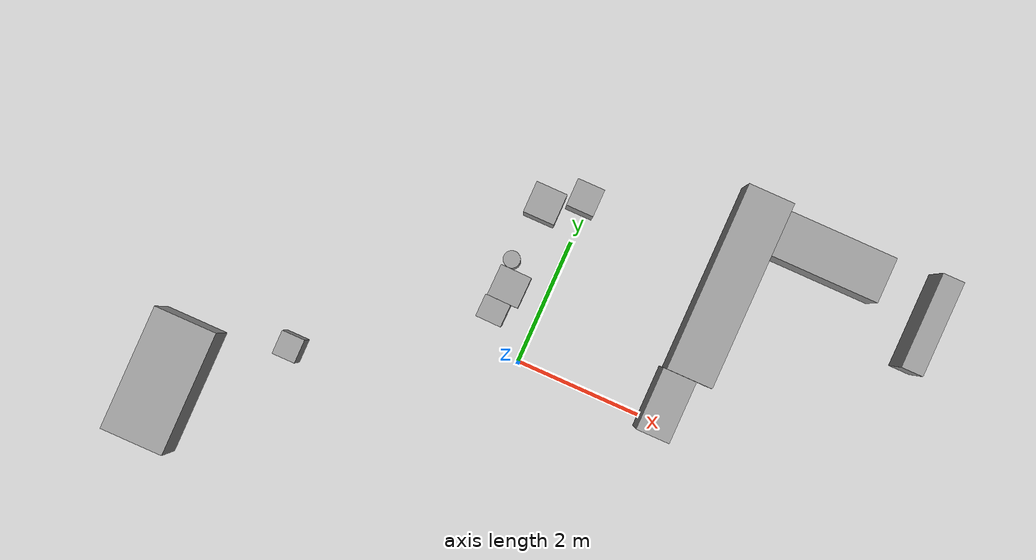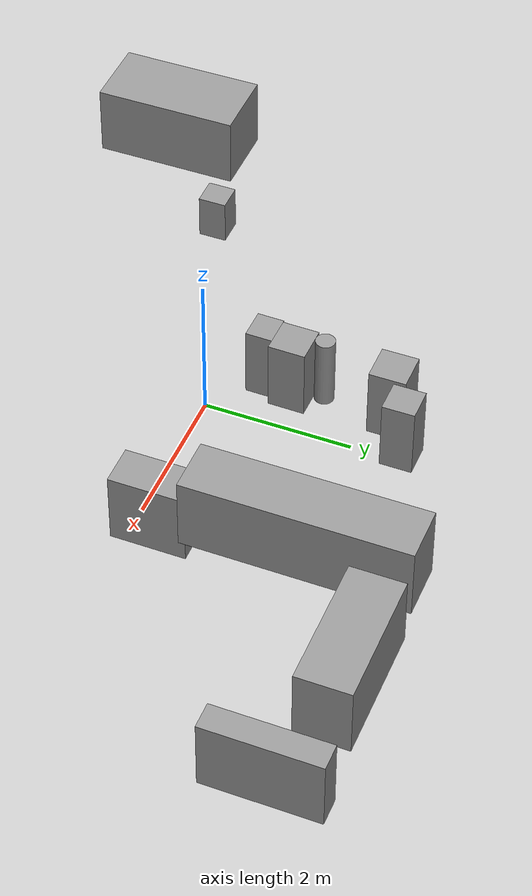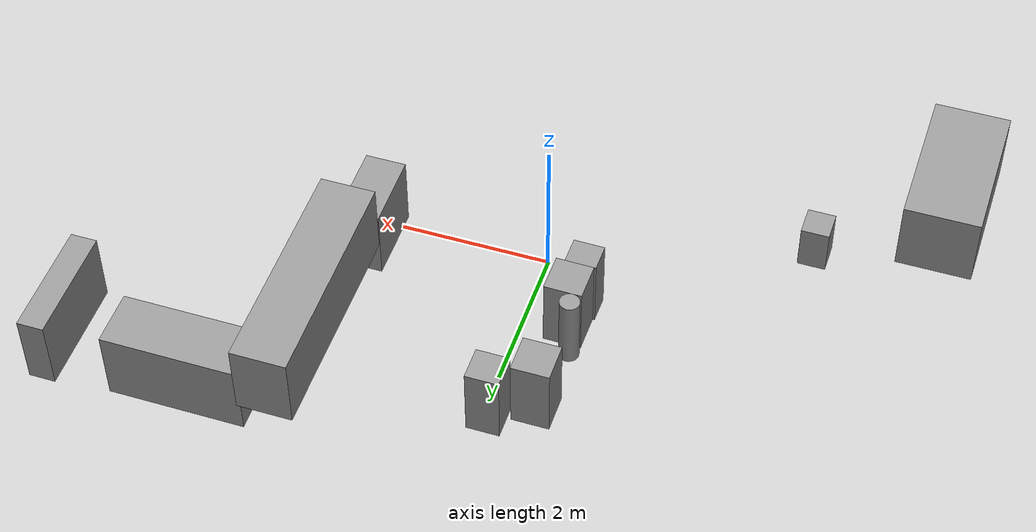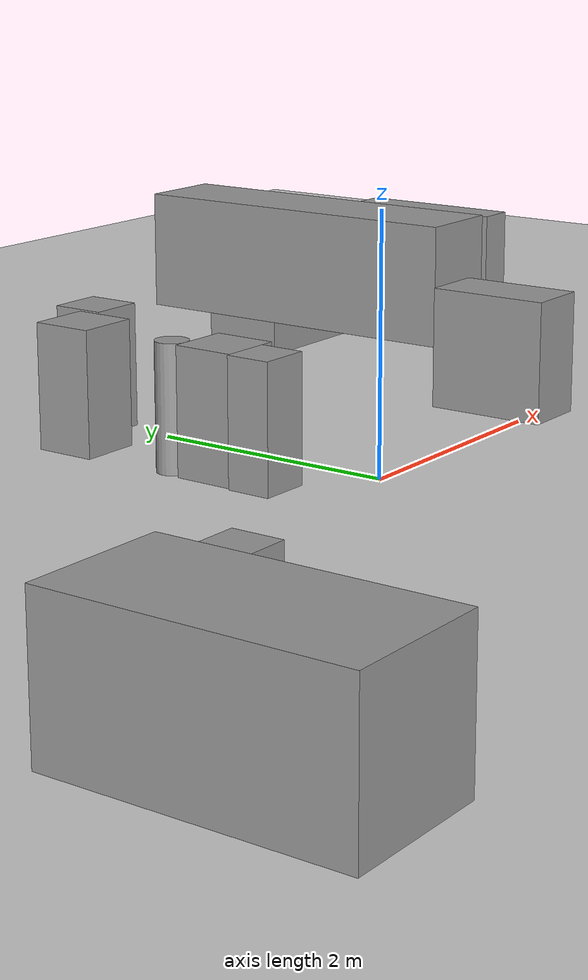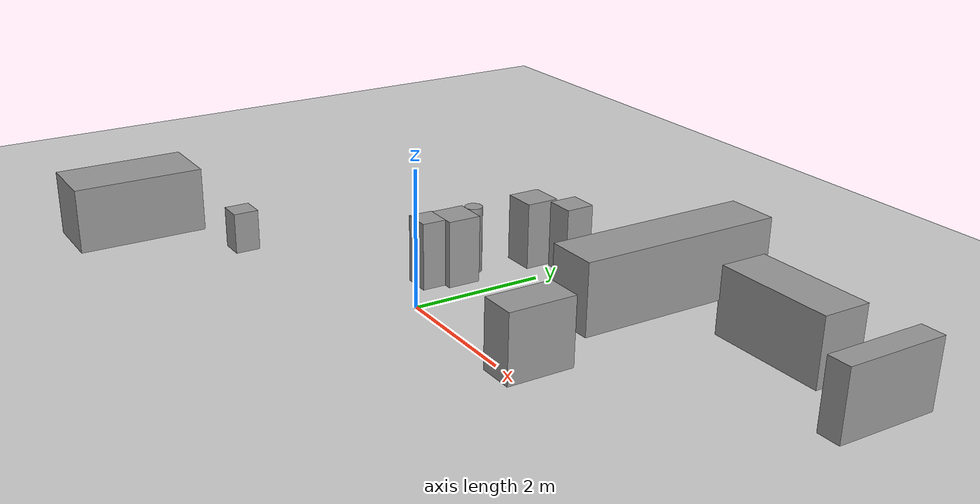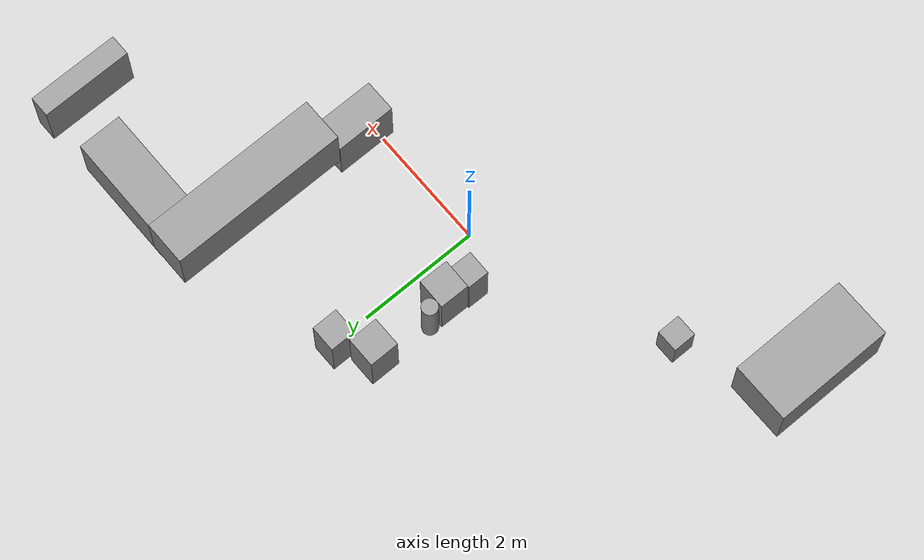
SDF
<sdf version="1.6">
 <world name="default">
  <model name="ground_plane">
   <static>1</static>
   <link name="link">
    <collision name="collision">
     <geometry><plane><normal>0 0 1</normal><size>100 100</size></plane></geometry>
     <surface><friction><ode><mu>100</mu><mu2>50</mu2></ode></friction></surface>
    </collision>
    <visual name="visual">
     <cast_shadows>0</cast_shadows>
     <geometry><plane><normal>0 0 1</normal><size>100 100</size></plane></geometry>
     <material>
      <script><uri>file://media/materials/scripts/gazebo.material</uri><name>Gazebo/Grey</name></script>
     </material>
    </visual>
   </link>
  </model>
  <model name="cma_gaveteiro_pequeno_0">
   <link name="link_0">
    <pose>0.256174 1.25055 0.5 0 -0 0</pose>
    <inertial>
     <mass>0.187186</mass>
     <inertia>
      <ixx>0.01851</ixx>
      <ixy>0</ixy>
      <ixz>0</ixz>
      <iyy>0.0185276</iyy>
      <iyz>0</iyz>
      <izz>0.00583981</izz>
     </inertia>
    </inertial>
    <visual name="visual">
     <geometry><box><size>0.433317 0.432002 1</size></box></geometry>
     <material>
      <lighting>1</lighting>
      <script><uri>file://media/materials/scripts/gazebo.material</uri><name>Gazebo/Grey</name></script>
      <ambient>0.3 0.3 0.3 1</ambient>
      <diffuse>0.7 0.7 0.7 1</diffuse>
      <specular>0.01 0.01 0.01 1</specular>
      <emissive>0 0 0 1</emissive>
     </material>
    </visual>
    <collision name="collision">
     <geometry><box><size>0.433317 0.432002 1</size></box></geometry>
     <surface>
      <friction>
       <ode><mu>1</mu><mu2>1</mu2><fdir1>0 0 0</fdir1><slip1>0</slip1><slip2>0</slip2></ode>
       <torsional>
        <coefficient>1</coefficient>
        <patch_radius>0</patch_radius>
        <surface_radius>0</surface_radius>
        <use_patch_radius>1</use_patch_radius>
        <ode><slip>0</slip></ode>
       </torsional>
      </friction>
      <bounce><restitution_coefficient>0</restitution_coefficient><threshold>1e+06</threshold></bounce>
      <contact>
       <collide_without_contact>0</collide_without_contact>
       <collide_without_contact_bitmask>1</collide_without_contact_bitmask>
       <collide_bitmask>1</collide_bitmask>
       <ode>
        <soft_cfm>0</soft_cfm>
        <soft_erp>0.2</soft_erp>
        <kp>1e+13</kp>
        <kd>1</kd>
        <max_vel>0.01</max_vel>
        <min_depth>0</min_depth>
       </ode>
       <bullet>
        <split_impulse>1</split_impulse>
        <split_impulse_penetration_threshold>-0.01</split_impulse_penetration_threshold>
        <soft_cfm>0</soft_cfm>
        <soft_erp>0.2</soft_erp>
        <kp>1e+13</kp>
        <kd>1</kd>
       </bullet>
      </contact>
     </surface>
    </collision>
   </link>
   <static>0</static>
   <pose>-0.336046 1.39512 0 0 0 -5.9e-05</pose>
  </model>
  <model name="cma_gaveteiro">
   <link name="link_0">
    <pose>-0 4e-06 0 0 -0 0</pose>
    <inertial>
     <mass>0.245086</mass>
     <inertia>
      <ixx>0.025418</ixx>
      <ixy>0</ixy>
      <ixz>0</ixz>
      <iyy>0.0254411</iyy>
      <iyz>0</iyz>
      <izz>0.0100113</izz>
     </inertia>
    </inertial>
    <visual name="visual">
     <geometry><box><size>0.495657 0.494491 1</size></box></geometry>
     <material>
      <lighting>1</lighting>
      <script><uri>file://media/materials/scripts/gazebo.material</uri><name>Gazebo/Grey</name></script>
      <ambient>0.3 0.3 0.3 1</ambient>
      <diffuse>0.7 0.7 0.7 1</diffuse>
      <specular>0.01 0.01 0.01 1</specular>
      <emissive>0 0 0 1</emissive>
     </material>
    </visual>
    <collision name="collision">
     <geometry><box><size>0.495657 0.494491 1</size></box></geometry>
     <surface>
      <friction>
       <ode><mu>1</mu><mu2>1</mu2><fdir1>0 0 0</fdir1><slip1>0</slip1><slip2>0</slip2></ode>
       <torsional>
        <coefficient>1</coefficient>
        <patch_radius>0</patch_radius>
        <surface_radius>0</surface_radius>
        <use_patch_radius>1</use_patch_radius>
        <ode><slip>0</slip></ode>
       </torsional>
      </friction>
      <bounce><restitution_coefficient>0</restitution_coefficient><threshold>1e+06</threshold></bounce>
      <contact>
       <collide_without_contact>0</collide_without_contact>
       <collide_without_contact_bitmask>1</collide_without_contact_bitmask>
       <collide_bitmask>1</collide_bitmask>
       <ode>
        <soft_cfm>0</soft_cfm>
        <soft_erp>0.2</soft_erp>
        <kp>1e+13</kp>
        <kd>1</kd>
        <max_vel>0.01</max_vel>
        <min_depth>0</min_depth>
       </ode>
       <bullet>
        <split_impulse>1</split_impulse>
        <split_impulse_penetration_threshold>-0.01</split_impulse_penetration_threshold>
        <soft_cfm>0</soft_cfm>
        <soft_erp>0.2</soft_erp>
        <kp>1e+13</kp>
        <kd>1</kd>
       </bullet>
      </contact>
     </surface>
    </collision>
   </link>
   <static>0</static>
   <pose>-0.591988 2.3262 0.5 -1e-06 -1e-06 0.000484</pose>
  </model>
  <model name="cma_gaveteiro_0">
   <link name="link_0">
    <pose>-0 4e-06 0 0 -0 0</pose>
    <inertial>
     <mass>0.245086</mass>
     <inertia>
      <ixx>0.025418</ixx>
      <ixy>0</ixy>
      <ixz>0</ixz>
      <iyy>0.0254411</iyy>
      <iyz>0</iyz>
      <izz>0.0100113</izz>
     </inertia>
    </inertial>
    <visual name="visual">
     <geometry><box><size>0.495657 0.494491 1</size></box></geometry>
     <material>
      <lighting>1</lighting>
      <script><uri>file://media/materials/scripts/gazebo.material</uri><name>Gazebo/Grey</name></script>
      <ambient>0.3 0.3 0.3 1</ambient>
      <diffuse>0.7 0.7 0.7 1</diffuse>
      <specular>0.01 0.01 0.01 1</specular>
      <emissive>0 0 0 1</emissive>
     </material>
    </visual>
    <collision name="collision">
     <geometry><box><size>0.495657 0.494491 1</size></box></geometry>
     <surface>
      <friction>
       <ode><mu>1</mu><mu2>1</mu2><fdir1>0 0 0</fdir1><slip1>0</slip1><slip2>0</slip2></ode>
       <torsional>
        <coefficient>1</coefficient>
        <patch_radius>0</patch_radius>
        <surface_radius>0</surface_radius>
        <use_patch_radius>1</use_patch_radius>
        <ode><slip>0</slip></ode>
       </torsional>
      </friction>
      <bounce><restitution_coefficient>0</restitution_coefficient><threshold>1e+06</threshold></bounce>
      <contact>
       <collide_without_contact>0</collide_without_contact>
       <collide_without_contact_bitmask>1</collide_without_contact_bitmask>
       <collide_bitmask>1</collide_bitmask>
       <ode>
        <soft_cfm>0</soft_cfm>
        <soft_erp>0.2</soft_erp>
        <kp>1e+13</kp>
        <kd>1</kd>
        <max_vel>0.01</max_vel>
        <min_depth>0</min_depth>
       </ode>
       <bullet>
        <split_impulse>1</split_impulse>
        <split_impulse_penetration_threshold>-0.01</split_impulse_penetration_threshold>
        <soft_cfm>0</soft_cfm>
        <soft_erp>0.2</soft_erp>
        <kp>1e+13</kp>
        <kd>1</kd>
       </bullet>
      </contact>
     </surface>
    </collision>
   </link>
   <static>0</static>
   <pose>-0.577892 0.984091 0.499999 -2e-06 -0 -0.014211</pose>
  </model>
  <model name="cma_lixo_0">
   <link name="link_1">
    <pose>0.882962 1.81586 0.5 0 -0 0</pose>
    <inertial>
     <mass>0.0687644</mass>
     <inertia>
      <ixx>0.00602588</ixx>
      <ixy>0</ixy>
      <ixz>0</ixz>
      <iyy>0.00602588</iyy>
      <iyz>0</iyz>
      <izz>0.000591068</izz>
     </inertia>
    </inertial>
    <visual name="visual">
     <geometry><cylinder><radius>0.131112</radius><length>1</length></cylinder></geometry>
     <material>
      <lighting>1</lighting>
      <script><uri>file://media/materials/scripts/gazebo.material</uri><name>Gazebo/Grey</name></script>
      <ambient>0.3 0.3 0.3 1</ambient>
      <diffuse>0.7 0.7 0.7 1</diffuse>
      <specular>0.01 0.01 0.01 1</specular>
      <emissive>0 0 0 1</emissive>
     </material>
    </visual>
    <collision name="collision">
     <geometry><cylinder><radius>0.131112</radius><length>1</length></cylinder></geometry>
     <surface>
      <friction>
       <ode><mu>1</mu><mu2>1</mu2><fdir1>0 0 0</fdir1><slip1>0</slip1><slip2>0</slip2></ode>
       <torsional>
        <coefficient>1</coefficient>
        <patch_radius>0</patch_radius>
        <surface_radius>0</surface_radius>
        <use_patch_radius>1</use_patch_radius>
        <ode><slip>0</slip></ode>
       </torsional>
      </friction>
      <bounce><restitution_coefficient>0</restitution_coefficient><threshold>1e+06</threshold></bounce>
      <contact>
       <collide_without_contact>0</collide_without_contact>
       <collide_without_contact_bitmask>1</collide_without_contact_bitmask>
       <collide_bitmask>1</collide_bitmask>
       <ode>
        <soft_cfm>0</soft_cfm>
        <soft_erp>0.2</soft_erp>
        <kp>1e+13</kp>
        <kd>1</kd>
        <max_vel>0.01</max_vel>
        <min_depth>0</min_depth>
       </ode>
       <bullet>
        <split_impulse>1</split_impulse>
        <split_impulse_penetration_threshold>-0.01</split_impulse_penetration_threshold>
        <soft_cfm>0</soft_cfm>
        <soft_erp>0.2</soft_erp>
        <kp>1e+13</kp>
        <kd>1</kd>
       </bullet>
      </contact>
     </surface>
    </collision>
   </link>
   <static>0</static>
   <pose>-1.60935 -0.442731 -1e-06 0 0 -0.009777</pose>
  </model>
  <model name="cma_sofa2">
   <link name="link_0">
    <pose>-4.668 -2.00601 0.5 0 -0 0</pose>
    <inertial>
     <mass>1.98683</mass>
     <inertia>
      <ixx>0.819149</ixx>
      <ixy>0</ixy>
      <ixz>0</ixz>
      <iyy>0.331138</iyy>
      <iyz>0</iyz>
      <izz>0.819149</izz>
     </inertia>
    </inertial>
    <visual name="visual">
     <geometry><box><size>1 1.98682 1</size></box></geometry>
     <material>
      <lighting>1</lighting>
      <script><uri>file://media/materials/scripts/gazebo.material</uri><name>Gazebo/Grey</name></script>
      <ambient>0.3 0.3 0.3 1</ambient>
      <diffuse>0.7 0.7 0.7 1</diffuse>
      <specular>0.01 0.01 0.01 1</specular>
      <emissive>0 0 0 1</emissive>
     </material>
    </visual>
    <collision name="collision">
     <geometry><box><size>1 1.98682 1</size></box></geometry>
     <surface>
      <friction>
       <ode><mu>1</mu><mu2>1</mu2><fdir1>0 0 0</fdir1><slip1>0</slip1><slip2>0</slip2></ode>
       <torsional>
        <coefficient>1</coefficient>
        <patch_radius>0</patch_radius>
        <surface_radius>0</surface_radius>
        <use_patch_radius>1</use_patch_radius>
        <ode><slip>0</slip></ode>
       </torsional>
      </friction>
      <bounce><restitution_coefficient>0</restitution_coefficient><threshold>1e+06</threshold></bounce>
      <contact>
       <collide_without_contact>0</collide_without_contact>
       <collide_without_contact_bitmask>1</collide_without_contact_bitmask>
       <collide_bitmask>1</collide_bitmask>
       <ode>
        <soft_cfm>0</soft_cfm>
        <soft_erp>0.2</soft_erp>
        <kp>1e+13</kp>
        <kd>1</kd>
        <max_vel>0.01</max_vel>
        <min_depth>0</min_depth>
       </ode>
       <bullet>
        <split_impulse>1</split_impulse>
        <split_impulse_penetration_threshold>-0.01</split_impulse_penetration_threshold>
        <soft_cfm>0</soft_cfm>
        <soft_erp>0.2</soft_erp>
        <kp>1e+13</kp>
        <kd>1</kd>
       </bullet>
      </contact>
     </surface>
    </collision>
   </link>
   <static>0</static>
   <pose>-0.09533 -0.407834 -1.4e-05 -0 3e-06 1e-06</pose>
  </model>
  <model name="cma_apoio_s">
   <link name="link_1">
    <pose>-1.9376 -3.46551 0.5 0 -0 0</pose>
    <inertial>
     <mass>0.0878463</mass>
     <inertia>
      <ixx>0.00392696</ixx>
      <ixy>0</ixy>
      <ixz>0</ixz>
      <iyy>0.00385356</iyy>
      <iyz>0</iyz>
      <izz>0.0020587</izz>
     </inertia>
    </inertial>
    <visual name="visual">
     <geometry><box><size>0.368223 0.381592 0.625118</size></box></geometry>
     <material>
      <lighting>1</lighting>
      <script><uri>file://media/materials/scripts/gazebo.material</uri><name>Gazebo/Grey</name></script>
      <ambient>0.3 0.3 0.3 1</ambient>
      <diffuse>0.7 0.7 0.7 1</diffuse>
      <specular>0.01 0.01 0.01 1</specular>
      <emissive>0 0 0 1</emissive>
     </material>
    </visual>
    <collision name="collision">
     <geometry><box><size>0.368223 0.381592 0.625118</size></box></geometry>
     <surface>
      <friction>
       <ode><mu>1</mu><mu2>1</mu2><fdir1>0 0 0</fdir1><slip1>0</slip1><slip2>0</slip2></ode>
       <torsional>
        <coefficient>1</coefficient>
        <patch_radius>0</patch_radius>
        <surface_radius>0</surface_radius>
        <use_patch_radius>1</use_patch_radius>
        <ode><slip>0</slip></ode>
       </torsional>
      </friction>
      <bounce><restitution_coefficient>0</restitution_coefficient><threshold>1e+06</threshold></bounce>
      <contact>
       <collide_without_contact>0</collide_without_contact>
       <collide_without_contact_bitmask>1</collide_without_contact_bitmask>
       <collide_bitmask>1</collide_bitmask>
       <ode>
        <soft_cfm>0</soft_cfm>
        <soft_erp>0.2</soft_erp>
        <kp>1e+13</kp>
        <kd>1</kd>
        <max_vel>0.01</max_vel>
        <min_depth>0</min_depth>
       </ode>
       <bullet>
        <split_impulse>1</split_impulse>
        <split_impulse_penetration_threshold>-0.01</split_impulse_penetration_threshold>
        <soft_cfm>0</soft_cfm>
        <soft_erp>0.2</soft_erp>
        <kp>1e+13</kp>
        <kd>1</kd>
       </bullet>
      </contact>
     </surface>
    </collision>
   </link>
   <static>0</static>
   <pose>-1.30905 2.27098 -0.187446 -1e-06 1e-06 -0.000832</pose>
  </model>
  <model name="cma_gaveteiro_pequeno_e">
   <link name="link_1">
    <pose>1e-06 -3e-06 0 0 -0 0</pose>
    <inertial>
     <mass>0.145532</mass>
     <inertia>
      <ixx>0.0136813</ixx>
      <ixy>0</ixy>
      <ixz>0</ixz>
      <iyy>0.0141327</iyy>
      <iyz>0</iyz>
      <izz>0.00355866</izz>
     </inertia>
    </inertial>
    <visual name="visual">
     <geometry><box><size>0.4066 0.357918 1</size></box></geometry>
     <material>
      <lighting>1</lighting>
      <script><uri>file://media/materials/scripts/gazebo.material</uri><name>Gazebo/Grey</name></script>
      <ambient>0.3 0.3 0.3 1</ambient>
      <diffuse>0.7 0.7 0.7 1</diffuse>
      <specular>0.01 0.01 0.01 1</specular>
      <emissive>0 0 0 1</emissive>
     </material>
    </visual>
    <collision name="collision">
     <geometry><box><size>0.4066 0.357918 1</size></box></geometry>
     <surface>
      <friction>
       <ode><mu>1</mu><mu2>1</mu2><fdir1>0 0 0</fdir1><slip1>0</slip1><slip2>0</slip2></ode>
       <torsional>
        <coefficient>1</coefficient>
        <patch_radius>0</patch_radius>
        <surface_radius>0</surface_radius>
        <use_patch_radius>1</use_patch_radius>
        <ode><slip>0</slip></ode>
       </torsional>
      </friction>
      <bounce><restitution_coefficient>0</restitution_coefficient><threshold>1e+06</threshold></bounce>
      <contact>
       <collide_without_contact>0</collide_without_contact>
       <collide_without_contact_bitmask>1</collide_without_contact_bitmask>
       <collide_bitmask>1</collide_bitmask>
       <ode>
        <soft_cfm>0</soft_cfm>
        <soft_erp>0.2</soft_erp>
        <kp>1e+13</kp>
        <kd>1</kd>
        <max_vel>0.01</max_vel>
        <min_depth>0</min_depth>
       </ode>
       <bullet>
        <split_impulse>1</split_impulse>
        <split_impulse_penetration_threshold>-0.01</split_impulse_penetration_threshold>
        <soft_cfm>0</soft_cfm>
        <soft_erp>0.2</soft_erp>
        <kp>1e+13</kp>
        <kd>1</kd>
       </bullet>
      </contact>
     </surface>
    </collision>
   </link>
   <static>0</static>
   <pose>-0.652945 0.558916 0.500001 0 5e-06 -0.014212</pose>
  </model>
  <model name="cma_armario_coz_190x70cm">
   <link name="link_0">
    <pose>5.20958 2.97661 0.5 0 0 -1.57068</pose>
    <inertial>
     <mass>1.2966</mass>
     <inertia>
      <ixx>0.454477</ixx>
      <ixy>0</ixy>
      <ixz>0</ixz>
      <iyy>0.164706</iyy>
      <iyz>0</iyz>
      <izz>0.403084</izz>
     </inertia>
    </inertial>
    <visual name="visual">
     <geometry><box><size>0.724184 1.79058 1</size></box></geometry>
     <material>
      <lighting>1</lighting>
      <script><uri>file://media/materials/scripts/gazebo.material</uri><name>Gazebo/Grey</name></script>
      <ambient>0.3 0.3 0.3 1</ambient>
      <diffuse>0.7 0.7 0.7 1</diffuse>
      <specular>0.01 0.01 0.01 1</specular>
      <emissive>0 0 0 1</emissive>
     </material>
    </visual>
    <collision name="collision">
     <geometry><box><size>0.724184 1.79058 1</size></box></geometry>
     <surface>
      <friction>
       <ode><mu>1</mu><mu2>1</mu2><fdir1>0 0 0</fdir1><slip1>0</slip1><slip2>0</slip2></ode>
       <torsional>
        <coefficient>1</coefficient>
        <patch_radius>0</patch_radius>
        <surface_radius>0</surface_radius>
        <use_patch_radius>1</use_patch_radius>
        <ode><slip>0</slip></ode>
       </torsional>
      </friction>
      <bounce><restitution_coefficient>0</restitution_coefficient><threshold>1e+06</threshold></bounce>
      <contact>
       <collide_without_contact>0</collide_without_contact>
       <collide_without_contact_bitmask>1</collide_without_contact_bitmask>
       <collide_bitmask>1</collide_bitmask>
       <ode>
        <soft_cfm>0</soft_cfm>
        <soft_erp>0.2</soft_erp>
        <kp>1e+13</kp>
        <kd>1</kd>
        <max_vel>0.01</max_vel>
        <min_depth>0</min_depth>
       </ode>
       <bullet>
        <split_impulse>1</split_impulse>
        <split_impulse_penetration_threshold>-0.01</split_impulse_penetration_threshold>
        <soft_cfm>0</soft_cfm>
        <soft_erp>0.2</soft_erp>
        <kp>1e+13</kp>
        <kd>1</kd>
       </bullet>
      </contact>
     </surface>
    </collision>
   </link>
   <model name="cma_armario_coz_100x50cm">
    <link name="link_0">
     <pose>-3e-06 -3e-06 0 0 -0 0</pose>
     <inertial>
      <mass>0.536193</mass>
      <inertia>
       <ixx>0.0893657</ixx>
       <ixy>0</ixy>
       <ixz>0</ixz>
       <iyy>0.0575293</iyy>
       <iyz>0</iyz>
       <izz>0.0575293</izz>
      </inertia>
     </inertial>
     <visual name="visual">
      <geometry><box><size>0.536193 1 1</size></box></geometry>
      <material>
       <lighting>1</lighting>
       <script><uri>file://media/materials/scripts/gazebo.material</uri><name>Gazebo/Grey</name></script>
       <ambient>0.3 0.3 0.3 1</ambient>
       <diffuse>0.7 0.7 0.7 1</diffuse>
       <specular>0.01 0.01 0.01 1</specular>
       <emissive>0 0 0 1</emissive>
      </material>
     </visual>
     <collision name="collision">
      <geometry><box><size>0.536193 1 1</size></box></geometry>
      <surface>
       <friction>
        <ode><mu>1</mu><mu2>1</mu2><fdir1>0 0 0</fdir1><slip1>0</slip1><slip2>0</slip2></ode>
        <torsional>
         <coefficient>1</coefficient>
         <patch_radius>0</patch_radius>
         <surface_radius>0</surface_radius>
         <use_patch_radius>1</use_patch_radius>
         <ode><slip>0</slip></ode>
        </torsional>
       </friction>
       <bounce><restitution_coefficient>0</restitution_coefficient><threshold>1e+06</threshold></bounce>
       <contact>
        <collide_without_contact>0</collide_without_contact>
        <collide_without_contact_bitmask>1</collide_without_contact_bitmask>
        <collide_bitmask>1</collide_bitmask>
        <ode>
         <soft_cfm>0</soft_cfm>
         <soft_erp>0.2</soft_erp>
         <kp>1e+13</kp>
         <kd>1</kd>
         <max_vel>0.01</max_vel>
         <min_depth>0</min_depth>
        </ode>
        <bullet>
         <split_impulse>1</split_impulse>
         <split_impulse_penetration_threshold>-0.01</split_impulse_penetration_threshold>
         <soft_cfm>0</soft_cfm>
         <soft_erp>0.2</soft_erp>
         <kp>1e+13</kp>
         <kd>1</kd>
        </bullet>
       </contact>
      </surface>
     </collision>
    </link>
    <static>0</static>
    <pose>3.86455 -0.048915 0.5 0 -0 0</pose>
   </model>
   <model name="cma_armario_coz_300x70cm">
    <link name="link_0">
     <pose>3.26428 1.50856 0.5 0 -0 0</pose>
     <inertial>
      <mass>2.13833</mass>
      <inertia><ixx>1.732</ixx><ixy>0</ixy><ixz>0</ixz><iyy>0.271637</iyy><iyz>0</iyz><izz>1.64725</izz></inertia>
     </inertial>
     <visual name="visual">
      <geometry><box><size>0.724184 2.9529 1</size></box></geometry>
      <material>
       <lighting>1</lighting>
       <script><uri>file://media/materials/scripts/gazebo.material</uri><name>Gazebo/Grey</name></script>
       <ambient>0.3 0.3 0.3 1</ambient>
       <diffuse>0.7 0.7 0.7 1</diffuse>
       <specular>0.01 0.01 0.01 1</specular>
       <emissive>0 0 0 1</emissive>
      </material>
     </visual>
     <collision name="collision">
      <geometry><box><size>0.724184 2.9529 1</size></box></geometry>
      <surface>
       <friction>
        <ode><mu>1</mu><mu2>1</mu2><fdir1>0 0 0</fdir1><slip1>0</slip1><slip2>0</slip2></ode>
        <torsional>
         <coefficient>1</coefficient>
         <patch_radius>0</patch_radius>
         <surface_radius>0</surface_radius>
         <use_patch_radius>1</use_patch_radius>
         <ode><slip>0</slip></ode>
        </torsional>
       </friction>
       <bounce><restitution_coefficient>0</restitution_coefficient><threshold>1e+06</threshold></bounce>
       <contact>
        <collide_without_contact>0</collide_without_contact>
        <collide_without_contact_bitmask>1</collide_without_contact_bitmask>
        <collide_bitmask>1</collide_bitmask>
        <ode>
         <soft_cfm>0</soft_cfm>
         <soft_erp>0.2</soft_erp>
         <kp>1e+13</kp>
         <kd>1</kd>
         <max_vel>0.01</max_vel>
         <min_depth>0</min_depth>
        </ode>
        <bullet>
         <split_impulse>1</split_impulse>
         <split_impulse_penetration_threshold>-0.01</split_impulse_penetration_threshold>
         <soft_cfm>0</soft_cfm>
         <soft_erp>0.2</soft_erp>
         <kp>1e+13</kp>
         <kd>1</kd>
        </bullet>
       </contact>
      </surface>
     </collision>
    </link>
    <static>0</static>
    <pose>0.706289 0.418831 0.5 0 -0 0</pose>
   </model>
   <static>0</static>
   <pose>-1.5961 0.363887 0 0 -0 0</pose>
  </model>
  <model name="cma_armario_coz_150x20cm">
   <link name="link_1">
    <pose>7.18686 2.75247 0.5 0 -0 0</pose>
    <inertial>
     <mass>0.531573</mass>
     <inertia>
      <ixx>0.147651</ixx>
      <ixy>0</ixy>
      <ixz>0</ixz>
      <iyy>0.0496628</iyy>
      <iyz>0</iyz>
      <izz>0.108718</izz>
     </inertia>
    </inertial>
    <visual name="visual">
     <geometry><box><size>0.348023 1.52746 1</size></box></geometry>
     <material>
      <lighting>1</lighting>
      <script><uri>file://media/materials/scripts/gazebo.material</uri><name>Gazebo/Grey</name></script>
      <ambient>0.3 0.3 0.3 1</ambient>
      <diffuse>0.7 0.7 0.7 1</diffuse>
      <specular>0.01 0.01 0.01 1</specular>
      <emissive>0 0 0 1</emissive>
     </material>
    </visual>
    <collision name="collision">
     <geometry><box><size>0.348023 1.52746 1</size></box></geometry>
     <surface>
      <friction>
       <ode><mu>1</mu><mu2>1</mu2><fdir1>0 0 0</fdir1><slip1>0</slip1><slip2>0</slip2></ode>
       <torsional>
        <coefficient>1</coefficient>
        <patch_radius>0</patch_radius>
        <surface_radius>0</surface_radius>
        <use_patch_radius>1</use_patch_radius>
        <ode><slip>0</slip></ode>
       </torsional>
      </friction>
      <bounce><restitution_coefficient>0</restitution_coefficient><threshold>1e+06</threshold></bounce>
      <contact>
       <collide_without_contact>0</collide_without_contact>
       <collide_without_contact_bitmask>1</collide_without_contact_bitmask>
       <collide_bitmask>1</collide_bitmask>
       <ode>
        <soft_cfm>0</soft_cfm>
        <soft_erp>0.2</soft_erp>
        <kp>1e+13</kp>
        <kd>1</kd>
        <max_vel>0.01</max_vel>
        <min_depth>0</min_depth>
       </ode>
       <bullet>
        <split_impulse>1</split_impulse>
        <split_impulse_penetration_threshold>-0.01</split_impulse_penetration_threshold>
        <soft_cfm>0</soft_cfm>
        <soft_erp>0.2</soft_erp>
        <kp>1e+13</kp>
        <kd>1</kd>
       </bullet>
      </contact>
     </surface>
    </collision>
   </link>
   <static>0</static>
   <pose>-1.79432 0.264631 0 0 -0 0</pose>
  </model>
 </world>
</sdf>
